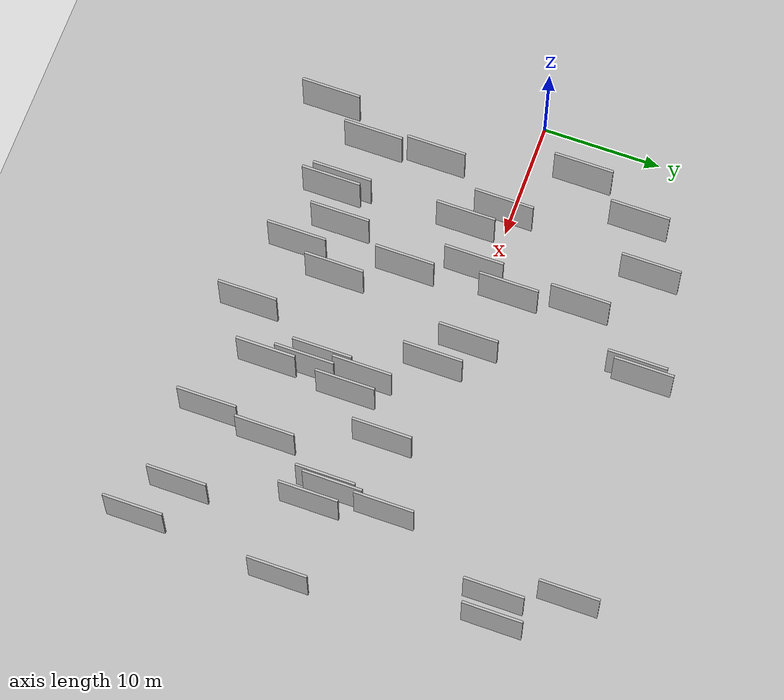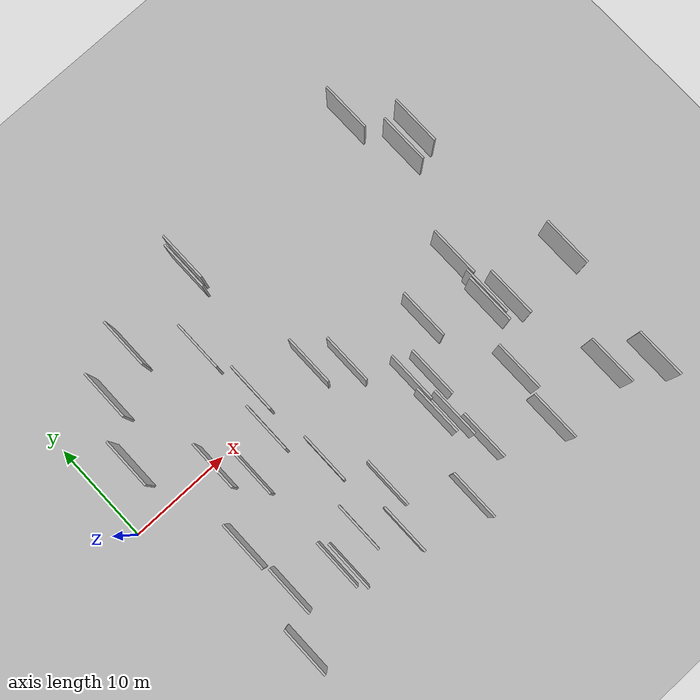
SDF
<?xml version="1.0" encoding="utf-8"?>

<sdf version="1.6">

   <world name="default">

      <gui fullscreen="0">

         <camera name="user_camera">

            <pose>-15 0 4.57585 0 0 0</pose>

            <view_controller>orbit</view_controller>

         </camera>

      </gui>

      <scene>

         <sky>

           <clouds>

             <speed>12</speed>

           </clouds>

         </sky>

         <ambient>0.4 0.4 0.4 1</ambient>

         <background>0.7 0.7 0.7 1</background>

         <shadows>1</shadows>

      </scene>

      <gravity>0 0 -9.8066</gravity>

      <magnetic_field>6e-06 2.3e-05 -4.2e-05</magnetic_field>

      <physics default="0" name="default_physics" type="ode">

         <ode>

            <solver>

               <type>quick</type>

               <iters>10</iters>

               <sor>1.0</sor>

               <use_dynamic_moi_rescaling>0</use_dynamic_moi_rescaling>

            </solver>

            <constraints>

               <cfm>0</cfm>

               <erp>0.2</erp>

               <contact_max_correcting_vel>100</contact_max_correcting_vel>

               <contact_surface_layer>0.001</contact_surface_layer>

            </constraints>

         </ode>

         <max_step_size>0.004</max_step_size>

         <real_time_factor>1</real_time_factor>

         <real_time_update_rate>250</real_time_update_rate>

      </physics>

      <light name="sun" type="directional">

         <cast_shadows>1</cast_shadows>

         <pose>0 0 10 0 0 0</pose>

         <diffuse>0.8 0.8 0.8 1</diffuse>

         <specular>0.2 0.2 0.2 1</specular>

         <attenuation>

            <range>1000</range>

            <constant>0.9</constant>

            <linear>0.01</linear>

            <quadratic>0.001</quadratic>

         </attenuation>

         <direction>-0.5 0.1 -0.9</direction>

      </light>

      <include>

         <name>ground_plane_1</name>

         <uri>model://HANNAS_ground_plane</uri>

         <pose>0 0 0  0 0 0</pose>

      </include>

      <include>

         <name>ground_plane_2</name>

         <uri>model://HANNAS_ground_plane</uri>

         <pose>100 0 0  0 0 0</pose>

      </include>

      <model name="HANNAS_wall_1">

         <static>1</static>

         <pose frame="">19.2661 14.6538 0.0 0.000000 0.000000 1.570796</pose>

         <link name="link">

            <pose frame="">0 0 2.50 0 0 0</pose>

            <collision name="collision">

               <geometry>

                  <box>

                     <size>5.00 0.2 5.00</size>

                  </box>

               </geometry>

               <max_contacts>10</max_contacts>

               <surface>

                  <contact>

                     <ode/>

                  </contact>

                  <bounce/>

                  <friction>

                     <torsional>

                        <ode/>

                     </torsional>

                     <ode/>

                  </friction>

               </surface>

            </collision>

            <visual name="visual">

               <cast_shadows>0</cast_shadows>

               <geometry>

                  <box>

                     <size>5.00 0.2 5.00</size>

                  </box>

               </geometry>

               <material>

                  <script>

                     <uri>model://HANNAS_wall/materials/scripts</uri>

                     <uri>model://HANNAS_wall/materials/textures</uri>

                     <name>vrc/HANNAS_wall</name>

                  </script>

               </material>

            </visual>

            <self_collide>0</self_collide>

            <enable_wind>0</enable_wind>

            <kinematic>0</kinematic>

         </link>

      </model>

      <model name="HANNAS_wall_2">

         <static>1</static>

         <pose frame="">23.6513 -1.5593 0.0 0.000000 0.000000 1.570796</pose>

         <link name="link">

            <pose frame="">0 0 2.50 0 0 0</pose>

            <collision name="collision">

               <geometry>

                  <box>

                     <size>5.00 0.2 5.00</size>

                  </box>

               </geometry>

               <max_contacts>10</max_contacts>

               <surface>

                  <contact>

                     <ode/>

                  </contact>

                  <bounce/>

                  <friction>

                     <torsional>

                        <ode/>

                     </torsional>

                     <ode/>

                  </friction>

               </surface>

            </collision>

            <visual name="visual">

               <cast_shadows>0</cast_shadows>

               <geometry>

                  <box>

                     <size>5.00 0.2 5.00</size>

                  </box>

               </geometry>

               <material>

                  <script>

                     <uri>model://HANNAS_wall/materials/scripts</uri>

                     <uri>model://HANNAS_wall/materials/textures</uri>

                     <name>vrc/HANNAS_wall</name>

                  </script>

               </material>

            </visual>

            <self_collide>0</self_collide>

            <enable_wind>0</enable_wind>

            <kinematic>0</kinematic>

         </link>

      </model>

      <model name="HANNAS_wall_3">

         <static>1</static>

         <pose frame="">15.9700 2.1878 0.0 0.000000 0.000000 1.570796</pose>

         <link name="link">

            <pose frame="">0 0 2.50 0 0 0</pose>

            <collision name="collision">

               <geometry>

                  <box>

                     <size>5.00 0.2 5.00</size>

                  </box>

               </geometry>

               <max_contacts>10</max_contacts>

               <surface>

                  <contact>

                     <ode/>

                  </contact>

                  <bounce/>

                  <friction>

                     <torsional>

                        <ode/>

                     </torsional>

                     <ode/>

                  </friction>

               </surface>

            </collision>

            <visual name="visual">

               <cast_shadows>0</cast_shadows>

               <geometry>

                  <box>

                     <size>5.00 0.2 5.00</size>

                  </box>

               </geometry>

               <material>

                  <script>

                     <uri>model://HANNAS_wall/materials/scripts</uri>

                     <uri>model://HANNAS_wall/materials/textures</uri>

                     <name>vrc/HANNAS_wall</name>

                  </script>

               </material>

            </visual>

            <self_collide>0</self_collide>

            <enable_wind>0</enable_wind>

            <kinematic>0</kinematic>

         </link>

      </model>

      <model name="HANNAS_wall_4">

         <static>1</static>

         <pose frame="">27.7663 -14.2322 0.0 0.000000 0.000000 1.570796</pose>

         <link name="link">

            <pose frame="">0 0 2.50 0 0 0</pose>

            <collision name="collision">

               <geometry>

                  <box>

                     <size>5.00 0.2 5.00</size>

                  </box>

               </geometry>

               <max_contacts>10</max_contacts>

               <surface>

                  <contact>

                     <ode/>

                  </contact>

                  <bounce/>

                  <friction>

                     <torsional>

                        <ode/>

                     </torsional>

                     <ode/>

                  </friction>

               </surface>

            </collision>

            <visual name="visual">

               <cast_shadows>0</cast_shadows>

               <geometry>

                  <box>

                     <size>5.00 0.2 5.00</size>

                  </box>

               </geometry>

               <material>

                  <script>

                     <uri>model://HANNAS_wall/materials/scripts</uri>

                     <uri>model://HANNAS_wall/materials/textures</uri>

                     <name>vrc/HANNAS_wall</name>

                  </script>

               </material>

            </visual>

            <self_collide>0</self_collide>

            <enable_wind>0</enable_wind>

            <kinematic>0</kinematic>

         </link>

      </model>

      <model name="HANNAS_wall_5">

         <static>1</static>

         <pose frame="">34.0127 -11.9965 0.0 0.000000 0.000000 1.570796</pose>

         <link name="link">

            <pose frame="">0 0 2.50 0 0 0</pose>

            <collision name="collision">

               <geometry>

                  <box>

                     <size>5.00 0.2 5.00</size>

                  </box>

               </geometry>

               <max_contacts>10</max_contacts>

               <surface>

                  <contact>

                     <ode/>

                  </contact>

                  <bounce/>

                  <friction>

                     <torsional>

                        <ode/>

                     </torsional>

                     <ode/>

                  </friction>

               </surface>

            </collision>

            <visual name="visual">

               <cast_shadows>0</cast_shadows>

               <geometry>

                  <box>

                     <size>5.00 0.2 5.00</size>

                  </box>

               </geometry>

               <material>

                  <script>

                     <uri>model://HANNAS_wall/materials/scripts</uri>

                     <uri>model://HANNAS_wall/materials/textures</uri>

                     <name>vrc/HANNAS_wall</name>

                  </script>

               </material>

            </visual>

            <self_collide>0</self_collide>

            <enable_wind>0</enable_wind>

            <kinematic>0</kinematic>

         </link>

      </model>

      <model name="HANNAS_wall_6">

         <static>1</static>

         <pose frame="">15.0200 7.9457 0.0 0.000000 0.000000 1.570796</pose>

         <link name="link">

            <pose frame="">0 0 2.50 0 0 0</pose>

            <collision name="collision">

               <geometry>

                  <box>

                     <size>5.00 0.2 5.00</size>

                  </box>

               </geometry>

               <max_contacts>10</max_contacts>

               <surface>

                  <contact>

                     <ode/>

                  </contact>

                  <bounce/>

                  <friction>

                     <torsional>

                        <ode/>

                     </torsional>

                     <ode/>

                  </friction>

               </surface>

            </collision>

            <visual name="visual">

               <cast_shadows>0</cast_shadows>

               <geometry>

                  <box>

                     <size>5.00 0.2 5.00</size>

                  </box>

               </geometry>

               <material>

                  <script>

                     <uri>model://HANNAS_wall/materials/scripts</uri>

                     <uri>model://HANNAS_wall/materials/textures</uri>

                     <name>vrc/HANNAS_wall</name>

                  </script>

               </material>

            </visual>

            <self_collide>0</self_collide>

            <enable_wind>0</enable_wind>

            <kinematic>0</kinematic>

         </link>

      </model>

      <model name="HANNAS_wall_7">

         <static>1</static>

         <pose frame="">11.1960 -3.1228 0.0 0.000000 0.000000 1.570796</pose>

         <link name="link">

            <pose frame="">0 0 2.50 0 0 0</pose>

            <collision name="collision">

               <geometry>

                  <box>

                     <size>5.00 0.2 5.00</size>

                  </box>

               </geometry>

               <max_contacts>10</max_contacts>

               <surface>

                  <contact>

                     <ode/>

                  </contact>

                  <bounce/>

                  <friction>

                     <torsional>

                        <ode/>

                     </torsional>

                     <ode/>

                  </friction>

               </surface>

            </collision>

            <visual name="visual">

               <cast_shadows>0</cast_shadows>

               <geometry>

                  <box>

                     <size>5.00 0.2 5.00</size>

                  </box>

               </geometry>

               <material>

                  <script>

                     <uri>model://HANNAS_wall/materials/scripts</uri>

                     <uri>model://HANNAS_wall/materials/textures</uri>

                     <name>vrc/HANNAS_wall</name>

                  </script>

               </material>

            </visual>

            <self_collide>0</self_collide>

            <enable_wind>0</enable_wind>

            <kinematic>0</kinematic>

         </link>

      </model>

      <model name="HANNAS_wall_8">

         <static>1</static>

         <pose frame="">11.9306 -14.4525 0.0 0.000000 0.000000 1.570796</pose>

         <link name="link">

            <pose frame="">0 0 2.50 0 0 0</pose>

            <collision name="collision">

               <geometry>

                  <box>

                     <size>5.00 0.2 5.00</size>

                  </box>

               </geometry>

               <max_contacts>10</max_contacts>

               <surface>

                  <contact>

                     <ode/>

                  </contact>

                  <bounce/>

                  <friction>

                     <torsional>

                        <ode/>

                     </torsional>

                     <ode/>

                  </friction>

               </surface>

            </collision>

            <visual name="visual">

               <cast_shadows>0</cast_shadows>

               <geometry>

                  <box>

                     <size>5.00 0.2 5.00</size>

                  </box>

               </geometry>

               <material>

                  <script>

                     <uri>model://HANNAS_wall/materials/scripts</uri>

                     <uri>model://HANNAS_wall/materials/textures</uri>

                     <name>vrc/HANNAS_wall</name>

                  </script>

               </material>

            </visual>

            <self_collide>0</self_collide>

            <enable_wind>0</enable_wind>

            <kinematic>0</kinematic>

         </link>

      </model>

      <model name="HANNAS_wall_9">

         <static>1</static>

         <pose frame="">37.9917 -6.8617 0.0 0.000000 0.000000 1.570796</pose>

         <link name="link">

            <pose frame="">0 0 2.50 0 0 0</pose>

            <collision name="collision">

               <geometry>

                  <box>

                     <size>5.00 0.2 5.00</size>

                  </box>

               </geometry>

               <max_contacts>10</max_contacts>

               <surface>

                  <contact>

                     <ode/>

                  </contact>

                  <bounce/>

                  <friction>

                     <torsional>

                        <ode/>

                     </torsional>

                     <ode/>

                  </friction>

               </surface>

            </collision>

            <visual name="visual">

               <cast_shadows>0</cast_shadows>

               <geometry>

                  <box>

                     <size>5.00 0.2 5.00</size>

                  </box>

               </geometry>

               <material>

                  <script>

                     <uri>model://HANNAS_wall/materials/scripts</uri>

                     <uri>model://HANNAS_wall/materials/textures</uri>

                     <name>vrc/HANNAS_wall</name>

                  </script>

               </material>

            </visual>

            <self_collide>0</self_collide>

            <enable_wind>0</enable_wind>

            <kinematic>0</kinematic>

         </link>

      </model>

      <model name="HANNAS_wall_10">

         <static>1</static>

         <pose frame="">23.6652 -17.3203 0.0 0.000000 0.000000 1.570796</pose>

         <link name="link">

            <pose frame="">0 0 2.50 0 0 0</pose>

            <collision name="collision">

               <geometry>

                  <box>

                     <size>5.00 0.2 5.00</size>

                  </box>

               </geometry>

               <max_contacts>10</max_contacts>

               <surface>

                  <contact>

                     <ode/>

                  </contact>

                  <bounce/>

                  <friction>

                     <torsional>

                        <ode/>

                     </torsional>

                     <ode/>

                  </friction>

               </surface>

            </collision>

            <visual name="visual">

               <cast_shadows>0</cast_shadows>

               <geometry>

                  <box>

                     <size>5.00 0.2 5.00</size>

                  </box>

               </geometry>

               <material>

                  <script>

                     <uri>model://HANNAS_wall/materials/scripts</uri>

                     <uri>model://HANNAS_wall/materials/textures</uri>

                     <name>vrc/HANNAS_wall</name>

                  </script>

               </material>

            </visual>

            <self_collide>0</self_collide>

            <enable_wind>0</enable_wind>

            <kinematic>0</kinematic>

         </link>

      </model>

      <model name="HANNAS_wall_11">

         <static>1</static>

         <pose frame="">6.5280 -7.3016 0.0 0.000000 0.000000 1.570796</pose>

         <link name="link">

            <pose frame="">0 0 2.50 0 0 0</pose>

            <collision name="collision">

               <geometry>

                  <box>

                     <size>5.00 0.2 5.00</size>

                  </box>

               </geometry>

               <max_contacts>10</max_contacts>

               <surface>

                  <contact>

                     <ode/>

                  </contact>

                  <bounce/>

                  <friction>

                     <torsional>

                        <ode/>

                     </torsional>

                     <ode/>

                  </friction>

               </surface>

            </collision>

            <visual name="visual">

               <cast_shadows>0</cast_shadows>

               <geometry>

                  <box>

                     <size>5.00 0.2 5.00</size>

                  </box>

               </geometry>

               <material>

                  <script>

                     <uri>model://HANNAS_wall/materials/scripts</uri>

                     <uri>model://HANNAS_wall/materials/textures</uri>

                     <name>vrc/HANNAS_wall</name>

                  </script>

               </material>

            </visual>

            <self_collide>0</self_collide>

            <enable_wind>0</enable_wind>

            <kinematic>0</kinematic>

         </link>

      </model>

      <model name="HANNAS_wall_12">

         <static>1</static>

         <pose frame="">16.5269 -6.4762 0.0 0.000000 0.000000 1.570796</pose>

         <link name="link">

            <pose frame="">0 0 2.50 0 0 0</pose>

            <collision name="collision">

               <geometry>

                  <box>

                     <size>5.00 0.2 5.00</size>

                  </box>

               </geometry>

               <max_contacts>10</max_contacts>

               <surface>

                  <contact>

                     <ode/>

                  </contact>

                  <bounce/>

                  <friction>

                     <torsional>

                        <ode/>

                     </torsional>

                     <ode/>

                  </friction>

               </surface>

            </collision>

            <visual name="visual">

               <cast_shadows>0</cast_shadows>

               <geometry>

                  <box>

                     <size>5.00 0.2 5.00</size>

                  </box>

               </geometry>

               <material>

                  <script>

                     <uri>model://HANNAS_wall/materials/scripts</uri>

                     <uri>model://HANNAS_wall/materials/textures</uri>

                     <name>vrc/HANNAS_wall</name>

                  </script>

               </material>

            </visual>

            <self_collide>0</self_collide>

            <enable_wind>0</enable_wind>

            <kinematic>0</kinematic>

         </link>

      </model>

      <model name="HANNAS_wall_13">

         <static>1</static>

         <pose frame="">31.1233 -3.1912 0.0 0.000000 0.000000 1.570796</pose>

         <link name="link">

            <pose frame="">0 0 2.50 0 0 0</pose>

            <collision name="collision">

               <geometry>

                  <box>

                     <size>5.00 0.2 5.00</size>

                  </box>

               </geometry>

               <max_contacts>10</max_contacts>

               <surface>

                  <contact>

                     <ode/>

                  </contact>

                  <bounce/>

                  <friction>

                     <torsional>

                        <ode/>

                     </torsional>

                     <ode/>

                  </friction>

               </surface>

            </collision>

            <visual name="visual">

               <cast_shadows>0</cast_shadows>

               <geometry>

                  <box>

                     <size>5.00 0.2 5.00</size>

                  </box>

               </geometry>

               <material>

                  <script>

                     <uri>model://HANNAS_wall/materials/scripts</uri>

                     <uri>model://HANNAS_wall/materials/textures</uri>

                     <name>vrc/HANNAS_wall</name>

                  </script>

               </material>

            </visual>

            <self_collide>0</self_collide>

            <enable_wind>0</enable_wind>

            <kinematic>0</kinematic>

         </link>

      </model>

      <model name="HANNAS_wall_14">

         <static>1</static>

         <pose frame="">38.7796 14.9686 0.0 0.000000 0.000000 1.570796</pose>

         <link name="link">

            <pose frame="">0 0 2.50 0 0 0</pose>

            <collision name="collision">

               <geometry>

                  <box>

                     <size>5.00 0.2 5.00</size>

                  </box>

               </geometry>

               <max_contacts>10</max_contacts>

               <surface>

                  <contact>

                     <ode/>

                  </contact>

                  <bounce/>

                  <friction>

                     <torsional>

                        <ode/>

                     </torsional>

                     <ode/>

                  </friction>

               </surface>

            </collision>

            <visual name="visual">

               <cast_shadows>0</cast_shadows>

               <geometry>

                  <box>

                     <size>5.00 0.2 5.00</size>

                  </box>

               </geometry>

               <material>

                  <script>

                     <uri>model://HANNAS_wall/materials/scripts</uri>

                     <uri>model://HANNAS_wall/materials/textures</uri>

                     <name>vrc/HANNAS_wall</name>

                  </script>

               </material>

            </visual>

            <self_collide>0</self_collide>

            <enable_wind>0</enable_wind>

            <kinematic>0</kinematic>

         </link>

      </model>

      <model name="HANNAS_wall_15">

         <static>1</static>

         <pose frame="">26.6368 -6.4794 0.0 0.000000 0.000000 1.570796</pose>

         <link name="link">

            <pose frame="">0 0 2.50 0 0 0</pose>

            <collision name="collision">

               <geometry>

                  <box>

                     <size>5.00 0.2 5.00</size>

                  </box>

               </geometry>

               <max_contacts>10</max_contacts>

               <surface>

                  <contact>

                     <ode/>

                  </contact>

                  <bounce/>

                  <friction>

                     <torsional>

                        <ode/>

                     </torsional>

                     <ode/>

                  </friction>

               </surface>

            </collision>

            <visual name="visual">

               <cast_shadows>0</cast_shadows>

               <geometry>

                  <box>

                     <size>5.00 0.2 5.00</size>

                  </box>

               </geometry>

               <material>

                  <script>

                     <uri>model://HANNAS_wall/materials/scripts</uri>

                     <uri>model://HANNAS_wall/materials/textures</uri>

                     <name>vrc/HANNAS_wall</name>

                  </script>

               </material>

            </visual>

            <self_collide>0</self_collide>

            <enable_wind>0</enable_wind>

            <kinematic>0</kinematic>

         </link>

      </model>

      <model name="HANNAS_wall_16">

         <static>1</static>

         <pose frame="">26.3053 -9.9711 0.0 0.000000 0.000000 1.570796</pose>

         <link name="link">

            <pose frame="">0 0 2.50 0 0 0</pose>

            <collision name="collision">

               <geometry>

                  <box>

                     <size>5.00 0.2 5.00</size>

                  </box>

               </geometry>

               <max_contacts>10</max_contacts>

               <surface>

                  <contact>

                     <ode/>

                  </contact>

                  <bounce/>

                  <friction>

                     <torsional>

                        <ode/>

                     </torsional>

                     <ode/>

                  </friction>

               </surface>

            </collision>

            <visual name="visual">

               <cast_shadows>0</cast_shadows>

               <geometry>

                  <box>

                     <size>5.00 0.2 5.00</size>

                  </box>

               </geometry>

               <material>

                  <script>

                     <uri>model://HANNAS_wall/materials/scripts</uri>

                     <uri>model://HANNAS_wall/materials/textures</uri>

                     <name>vrc/HANNAS_wall</name>

                  </script>

               </material>

            </visual>

            <self_collide>0</self_collide>

            <enable_wind>0</enable_wind>

            <kinematic>0</kinematic>

         </link>

      </model>

      <model name="HANNAS_wall_17">

         <static>1</static>

         <pose frame="">18.8314 13.9887 0.0 0.000000 0.000000 1.570796</pose>

         <link name="link">

            <pose frame="">0 0 2.50 0 0 0</pose>

            <collision name="collision">

               <geometry>

                  <box>

                     <size>5.00 0.2 5.00</size>

                  </box>

               </geometry>

               <max_contacts>10</max_contacts>

               <surface>

                  <contact>

                     <ode/>

                  </contact>

                  <bounce/>

                  <friction>

                     <torsional>

                        <ode/>

                     </torsional>

                     <ode/>

                  </friction>

               </surface>

            </collision>

            <visual name="visual">

               <cast_shadows>0</cast_shadows>

               <geometry>

                  <box>

                     <size>5.00 0.2 5.00</size>

                  </box>

               </geometry>

               <material>

                  <script>

                     <uri>model://HANNAS_wall/materials/scripts</uri>

                     <uri>model://HANNAS_wall/materials/textures</uri>

                     <name>vrc/HANNAS_wall</name>

                  </script>

               </material>

            </visual>

            <self_collide>0</self_collide>

            <enable_wind>0</enable_wind>

            <kinematic>0</kinematic>

         </link>

      </model>

      <model name="HANNAS_wall_18">

         <static>1</static>

         <pose frame="">40.2063 -17.0355 0.0 0.000000 0.000000 1.570796</pose>

         <link name="link">

            <pose frame="">0 0 2.50 0 0 0</pose>

            <collision name="collision">

               <geometry>

                  <box>

                     <size>5.00 0.2 5.00</size>

                  </box>

               </geometry>

               <max_contacts>10</max_contacts>

               <surface>

                  <contact>

                     <ode/>

                  </contact>

                  <bounce/>

                  <friction>

                     <torsional>

                        <ode/>

                     </torsional>

                     <ode/>

                  </friction>

               </surface>

            </collision>

            <visual name="visual">

               <cast_shadows>0</cast_shadows>

               <geometry>

                  <box>

                     <size>5.00 0.2 5.00</size>

                  </box>

               </geometry>

               <material>

                  <script>

                     <uri>model://HANNAS_wall/materials/scripts</uri>

                     <uri>model://HANNAS_wall/materials/textures</uri>

                     <name>vrc/HANNAS_wall</name>

                  </script>

               </material>

            </visual>

            <self_collide>0</self_collide>

            <enable_wind>0</enable_wind>

            <kinematic>0</kinematic>

         </link>

      </model>

      <model name="HANNAS_wall_19">

         <static>1</static>

         <pose frame="">43.6343 -19.3873 0.0 0.000000 0.000000 1.570796</pose>

         <link name="link">

            <pose frame="">0 0 2.50 0 0 0</pose>

            <collision name="collision">

               <geometry>

                  <box>

                     <size>5.00 0.2 5.00</size>

                  </box>

               </geometry>

               <max_contacts>10</max_contacts>

               <surface>

                  <contact>

                     <ode/>

                  </contact>

                  <bounce/>

                  <friction>

                     <torsional>

                        <ode/>

                     </torsional>

                     <ode/>

                  </friction>

               </surface>

            </collision>

            <visual name="visual">

               <cast_shadows>0</cast_shadows>

               <geometry>

                  <box>

                     <size>5.00 0.2 5.00</size>

                  </box>

               </geometry>

               <material>

                  <script>

                     <uri>model://HANNAS_wall/materials/scripts</uri>

                     <uri>model://HANNAS_wall/materials/textures</uri>

                     <name>vrc/HANNAS_wall</name>

                  </script>

               </material>

            </visual>

            <self_collide>0</self_collide>

            <enable_wind>0</enable_wind>

            <kinematic>0</kinematic>

         </link>

      </model>

      <model name="HANNAS_wall_20">

         <static>1</static>

         <pose frame="">6.4087 10.1538 0.0 0.000000 0.000000 1.570796</pose>

         <link name="link">

            <pose frame="">0 0 2.50 0 0 0</pose>

            <collision name="collision">

               <geometry>

                  <box>

                     <size>5.00 0.2 5.00</size>

                  </box>

               </geometry>

               <max_contacts>10</max_contacts>

               <surface>

                  <contact>

                     <ode/>

                  </contact>

                  <bounce/>

                  <friction>

                     <torsional>

                        <ode/>

                     </torsional>

                     <ode/>

                  </friction>

               </surface>

            </collision>

            <visual name="visual">

               <cast_shadows>0</cast_shadows>

               <geometry>

                  <box>

                     <size>5.00 0.2 5.00</size>

                  </box>

               </geometry>

               <material>

                  <script>

                     <uri>model://HANNAS_wall/materials/scripts</uri>

                     <uri>model://HANNAS_wall/materials/textures</uri>

                     <name>vrc/HANNAS_wall</name>

                  </script>

               </material>

            </visual>

            <self_collide>0</self_collide>

            <enable_wind>0</enable_wind>

            <kinematic>0</kinematic>

         </link>

      </model>

      <model name="HANNAS_wall_21">

         <static>1</static>

         <pose frame="">19.0332 -11.6230 0.0 0.000000 0.000000 1.570796</pose>

         <link name="link">

            <pose frame="">0 0 2.50 0 0 0</pose>

            <collision name="collision">

               <geometry>

                  <box>

                     <size>5.00 0.2 5.00</size>

                  </box>

               </geometry>

               <max_contacts>10</max_contacts>

               <surface>

                  <contact>

                     <ode/>

                  </contact>

                  <bounce/>

                  <friction>

                     <torsional>

                        <ode/>

                     </torsional>

                     <ode/>

                  </friction>

               </surface>

            </collision>

            <visual name="visual">

               <cast_shadows>0</cast_shadows>

               <geometry>

                  <box>

                     <size>5.00 0.2 5.00</size>

                  </box>

               </geometry>

               <material>

                  <script>

                     <uri>model://HANNAS_wall/materials/scripts</uri>

                     <uri>model://HANNAS_wall/materials/textures</uri>

                     <name>vrc/HANNAS_wall</name>

                  </script>

               </material>

            </visual>

            <self_collide>0</self_collide>

            <enable_wind>0</enable_wind>

            <kinematic>0</kinematic>

         </link>

      </model>

      <model name="HANNAS_wall_22">

         <static>1</static>

         <pose frame="">36.2271 -6.0763 0.0 0.000000 0.000000 1.570796</pose>

         <link name="link">

            <pose frame="">0 0 2.50 0 0 0</pose>

            <collision name="collision">

               <geometry>

                  <box>

                     <size>5.00 0.2 5.00</size>

                  </box>

               </geometry>

               <max_contacts>10</max_contacts>

               <surface>

                  <contact>

                     <ode/>

                  </contact>

                  <bounce/>

                  <friction>

                     <torsional>

                        <ode/>

                     </torsional>

                     <ode/>

                  </friction>

               </surface>

            </collision>

            <visual name="visual">

               <cast_shadows>0</cast_shadows>

               <geometry>

                  <box>

                     <size>5.00 0.2 5.00</size>

                  </box>

               </geometry>

               <material>

                  <script>

                     <uri>model://HANNAS_wall/materials/scripts</uri>

                     <uri>model://HANNAS_wall/materials/textures</uri>

                     <name>vrc/HANNAS_wall</name>

                  </script>

               </material>

            </visual>

            <self_collide>0</self_collide>

            <enable_wind>0</enable_wind>

            <kinematic>0</kinematic>

         </link>

      </model>

      <model name="HANNAS_wall_23">

         <static>1</static>

         <pose frame="">44.6072 -6.9962 0.0 0.000000 0.000000 1.570796</pose>

         <link name="link">

            <pose frame="">0 0 2.50 0 0 0</pose>

            <collision name="collision">

               <geometry>

                  <box>

                     <size>5.00 0.2 5.00</size>

                  </box>

               </geometry>

               <max_contacts>10</max_contacts>

               <surface>

                  <contact>

                     <ode/>

                  </contact>

                  <bounce/>

                  <friction>

                     <torsional>

                        <ode/>

                     </torsional>

                     <ode/>

                  </friction>

               </surface>

            </collision>

            <visual name="visual">

               <cast_shadows>0</cast_shadows>

               <geometry>

                  <box>

                     <size>5.00 0.2 5.00</size>

                  </box>

               </geometry>

               <material>

                  <script>

                     <uri>model://HANNAS_wall/materials/scripts</uri>

                     <uri>model://HANNAS_wall/materials/textures</uri>

                     <name>vrc/HANNAS_wall</name>

                  </script>

               </material>

            </visual>

            <self_collide>0</self_collide>

            <enable_wind>0</enable_wind>

            <kinematic>0</kinematic>

         </link>

      </model>

      <model name="HANNAS_wall_24">

         <static>1</static>

         <pose frame="">27.2567 -11.1444 0.0 0.000000 0.000000 1.570796</pose>

         <link name="link">

            <pose frame="">0 0 2.50 0 0 0</pose>

            <collision name="collision">

               <geometry>

                  <box>

                     <size>5.00 0.2 5.00</size>

                  </box>

               </geometry>

               <max_contacts>10</max_contacts>

               <surface>

                  <contact>

                     <ode/>

                  </contact>

                  <bounce/>

                  <friction>

                     <torsional>

                        <ode/>

                     </torsional>

                     <ode/>

                  </friction>

               </surface>

            </collision>

            <visual name="visual">

               <cast_shadows>0</cast_shadows>

               <geometry>

                  <box>

                     <size>5.00 0.2 5.00</size>

                  </box>

               </geometry>

               <material>

                  <script>

                     <uri>model://HANNAS_wall/materials/scripts</uri>

                     <uri>model://HANNAS_wall/materials/textures</uri>

                     <name>vrc/HANNAS_wall</name>

                  </script>

               </material>

            </visual>

            <self_collide>0</self_collide>

            <enable_wind>0</enable_wind>

            <kinematic>0</kinematic>

         </link>

      </model>

      <model name="HANNAS_wall_25">

         <static>1</static>

         <pose frame="">28.2446 -7.3317 0.0 0.000000 0.000000 1.570796</pose>

         <link name="link">

            <pose frame="">0 0 2.50 0 0 0</pose>

            <collision name="collision">

               <geometry>

                  <box>

                     <size>5.00 0.2 5.00</size>

                  </box>

               </geometry>

               <max_contacts>10</max_contacts>

               <surface>

                  <contact>

                     <ode/>

                  </contact>

                  <bounce/>

                  <friction>

                     <torsional>

                        <ode/>

                     </torsional>

                     <ode/>

                  </friction>

               </surface>

            </collision>

            <visual name="visual">

               <cast_shadows>0</cast_shadows>

               <geometry>

                  <box>

                     <size>5.00 0.2 5.00</size>

                  </box>

               </geometry>

               <material>

                  <script>

                     <uri>model://HANNAS_wall/materials/scripts</uri>

                     <uri>model://HANNAS_wall/materials/textures</uri>

                     <name>vrc/HANNAS_wall</name>

                  </script>

               </material>

            </visual>

            <self_collide>0</self_collide>

            <enable_wind>0</enable_wind>

            <kinematic>0</kinematic>

         </link>

      </model>

      <model name="HANNAS_wall_26">

         <static>1</static>

         <pose frame="">33.3129 -17.1293 0.0 0.000000 0.000000 1.570796</pose>

         <link name="link">

            <pose frame="">0 0 2.50 0 0 0</pose>

            <collision name="collision">

               <geometry>

                  <box>

                     <size>5.00 0.2 5.00</size>

                  </box>

               </geometry>

               <max_contacts>10</max_contacts>

               <surface>

                  <contact>

                     <ode/>

                  </contact>

                  <bounce/>

                  <friction>

                     <torsional>

                        <ode/>

                     </torsional>

                     <ode/>

                  </friction>

               </surface>

            </collision>

            <visual name="visual">

               <cast_shadows>0</cast_shadows>

               <geometry>

                  <box>

                     <size>5.00 0.2 5.00</size>

                  </box>

               </geometry>

               <material>

                  <script>

                     <uri>model://HANNAS_wall/materials/scripts</uri>

                     <uri>model://HANNAS_wall/materials/textures</uri>

                     <name>vrc/HANNAS_wall</name>

                  </script>

               </material>

            </visual>

            <self_collide>0</self_collide>

            <enable_wind>0</enable_wind>

            <kinematic>0</kinematic>

         </link>

      </model>

      <model name="HANNAS_wall_27">

         <static>1</static>

         <pose frame="">6.9145 -12.6105 0.0 0.000000 0.000000 1.570796</pose>

         <link name="link">

            <pose frame="">0 0 2.50 0 0 0</pose>

            <collision name="collision">

               <geometry>

                  <box>

                     <size>5.00 0.2 5.00</size>

                  </box>

               </geometry>

               <max_contacts>10</max_contacts>

               <surface>

                  <contact>

                     <ode/>

                  </contact>

                  <bounce/>

                  <friction>

                     <torsional>

                        <ode/>

                     </torsional>

                     <ode/>

                  </friction>

               </surface>

            </collision>

            <visual name="visual">

               <cast_shadows>0</cast_shadows>

               <geometry>

                  <box>

                     <size>5.00 0.2 5.00</size>

                  </box>

               </geometry>

               <material>

                  <script>

                     <uri>model://HANNAS_wall/materials/scripts</uri>

                     <uri>model://HANNAS_wall/materials/textures</uri>

                     <name>vrc/HANNAS_wall</name>

                  </script>

               </material>

            </visual>

            <self_collide>0</self_collide>

            <enable_wind>0</enable_wind>

            <kinematic>0</kinematic>

         </link>

      </model>

      <model name="HANNAS_wall_28">

         <static>1</static>

         <pose frame="">11.2804 -13.7411 0.0 0.000000 0.000000 1.570796</pose>

         <link name="link">

            <pose frame="">0 0 2.50 0 0 0</pose>

            <collision name="collision">

               <geometry>

                  <box>

                     <size>5.00 0.2 5.00</size>

                  </box>

               </geometry>

               <max_contacts>10</max_contacts>

               <surface>

                  <contact>

                     <ode/>

                  </contact>

                  <bounce/>

                  <friction>

                     <torsional>

                        <ode/>

                     </torsional>

                     <ode/>

                  </friction>

               </surface>

            </collision>

            <visual name="visual">

               <cast_shadows>0</cast_shadows>

               <geometry>

                  <box>

                     <size>5.00 0.2 5.00</size>

                  </box>

               </geometry>

               <material>

                  <script>

                     <uri>model://HANNAS_wall/materials/scripts</uri>

                     <uri>model://HANNAS_wall/materials/textures</uri>

                     <name>vrc/HANNAS_wall</name>

                  </script>

               </material>

            </visual>

            <self_collide>0</self_collide>

            <enable_wind>0</enable_wind>

            <kinematic>0</kinematic>

         </link>

      </model>

      <model name="HANNAS_wall_29">

         <static>1</static>

         <pose frame="">14.7116 -12.6913 0.0 0.000000 0.000000 1.570796</pose>

         <link name="link">

            <pose frame="">0 0 2.50 0 0 0</pose>

            <collision name="collision">

               <geometry>

                  <box>

                     <size>5.00 0.2 5.00</size>

                  </box>

               </geometry>

               <max_contacts>10</max_contacts>

               <surface>

                  <contact>

                     <ode/>

                  </contact>

                  <bounce/>

                  <friction>

                     <torsional>

                        <ode/>

                     </torsional>

                     <ode/>

                  </friction>

               </surface>

            </collision>

            <visual name="visual">

               <cast_shadows>0</cast_shadows>

               <geometry>

                  <box>

                     <size>5.00 0.2 5.00</size>

                  </box>

               </geometry>

               <material>

                  <script>

                     <uri>model://HANNAS_wall/materials/scripts</uri>

                     <uri>model://HANNAS_wall/materials/textures</uri>

                     <name>vrc/HANNAS_wall</name>

                  </script>

               </material>

            </visual>

            <self_collide>0</self_collide>

            <enable_wind>0</enable_wind>

            <kinematic>0</kinematic>

         </link>

      </model>

      <model name="HANNAS_wall_30">

         <static>1</static>

         <pose frame="">4.5179 -17.1616 0.0 0.000000 0.000000 1.570796</pose>

         <link name="link">

            <pose frame="">0 0 2.50 0 0 0</pose>

            <collision name="collision">

               <geometry>

                  <box>

                     <size>5.00 0.2 5.00</size>

                  </box>

               </geometry>

               <max_contacts>10</max_contacts>

               <surface>

                  <contact>

                     <ode/>

                  </contact>

                  <bounce/>

                  <friction>

                     <torsional>

                        <ode/>

                     </torsional>

                     <ode/>

                  </friction>

               </surface>

            </collision>

            <visual name="visual">

               <cast_shadows>0</cast_shadows>

               <geometry>

                  <box>

                     <size>5.00 0.2 5.00</size>

                  </box>

               </geometry>

               <material>

                  <script>

                     <uri>model://HANNAS_wall/materials/scripts</uri>

                     <uri>model://HANNAS_wall/materials/textures</uri>

                     <name>vrc/HANNAS_wall</name>

                  </script>

               </material>

            </visual>

            <self_collide>0</self_collide>

            <enable_wind>0</enable_wind>

            <kinematic>0</kinematic>

         </link>

      </model>

      <model name="HANNAS_wall_31">

         <static>1</static>

         <pose frame="">3.9652 4.5310 0.0 0.000000 0.000000 1.570796</pose>

         <link name="link">

            <pose frame="">0 0 2.50 0 0 0</pose>

            <collision name="collision">

               <geometry>

                  <box>

                     <size>5.00 0.2 5.00</size>

                  </box>

               </geometry>

               <max_contacts>10</max_contacts>

               <surface>

                  <contact>

                     <ode/>

                  </contact>

                  <bounce/>

                  <friction>

                     <torsional>

                        <ode/>

                     </torsional>

                     <ode/>

                  </friction>

               </surface>

            </collision>

            <visual name="visual">

               <cast_shadows>0</cast_shadows>

               <geometry>

                  <box>

                     <size>5.00 0.2 5.00</size>

                  </box>

               </geometry>

               <material>

                  <script>

                     <uri>model://HANNAS_wall/materials/scripts</uri>

                     <uri>model://HANNAS_wall/materials/textures</uri>

                     <name>vrc/HANNAS_wall</name>

                  </script>

               </material>

            </visual>

            <self_collide>0</self_collide>

            <enable_wind>0</enable_wind>

            <kinematic>0</kinematic>

         </link>

      </model>

      <model name="HANNAS_wall_32">

         <static>1</static>

         <pose frame="">14.6505 -1.2130 0.0 0.000000 0.000000 1.570796</pose>

         <link name="link">

            <pose frame="">0 0 2.50 0 0 0</pose>

            <collision name="collision">

               <geometry>

                  <box>

                     <size>5.00 0.2 5.00</size>

                  </box>

               </geometry>

               <max_contacts>10</max_contacts>

               <surface>

                  <contact>

                     <ode/>

                  </contact>

                  <bounce/>

                  <friction>

                     <torsional>

                        <ode/>

                     </torsional>

                     <ode/>

                  </friction>

               </surface>

            </collision>

            <visual name="visual">

               <cast_shadows>0</cast_shadows>

               <geometry>

                  <box>

                     <size>5.00 0.2 5.00</size>

                  </box>

               </geometry>

               <material>

                  <script>

                     <uri>model://HANNAS_wall/materials/scripts</uri>

                     <uri>model://HANNAS_wall/materials/textures</uri>

                     <name>vrc/HANNAS_wall</name>

                  </script>

               </material>

            </visual>

            <self_collide>0</self_collide>

            <enable_wind>0</enable_wind>

            <kinematic>0</kinematic>

         </link>

      </model>

      <model name="HANNAS_wall_33">

         <static>1</static>

         <pose frame="">10.5560 12.4437 0.0 0.000000 0.000000 1.570796</pose>

         <link name="link">

            <pose frame="">0 0 2.50 0 0 0</pose>

            <collision name="collision">

               <geometry>

                  <box>

                     <size>5.00 0.2 5.00</size>

                  </box>

               </geometry>

               <max_contacts>10</max_contacts>

               <surface>

                  <contact>

                     <ode/>

                  </contact>

                  <bounce/>

                  <friction>

                     <torsional>

                        <ode/>

                     </torsional>

                     <ode/>

                  </friction>

               </surface>

            </collision>

            <visual name="visual">

               <cast_shadows>0</cast_shadows>

               <geometry>

                  <box>

                     <size>5.00 0.2 5.00</size>

                  </box>

               </geometry>

               <material>

                  <script>

                     <uri>model://HANNAS_wall/materials/scripts</uri>

                     <uri>model://HANNAS_wall/materials/textures</uri>

                     <name>vrc/HANNAS_wall</name>

                  </script>

               </material>

            </visual>

            <self_collide>0</self_collide>

            <enable_wind>0</enable_wind>

            <kinematic>0</kinematic>

         </link>

      </model>

      <model name="HANNAS_wall_34">

         <static>1</static>

         <pose frame="">42.4631 9.9287 0.0 0.000000 0.000000 1.570796</pose>

         <link name="link">

            <pose frame="">0 0 2.50 0 0 0</pose>

            <collision name="collision">

               <geometry>

                  <box>

                     <size>5.00 0.2 5.00</size>

                  </box>

               </geometry>

               <max_contacts>10</max_contacts>

               <surface>

                  <contact>

                     <ode/>

                  </contact>

                  <bounce/>

                  <friction>

                     <torsional>

                        <ode/>

                     </torsional>

                     <ode/>

                  </friction>

               </surface>

            </collision>

            <visual name="visual">

               <cast_shadows>0</cast_shadows>

               <geometry>

                  <box>

                     <size>5.00 0.2 5.00</size>

                  </box>

               </geometry>

               <material>

                  <script>

                     <uri>model://HANNAS_wall/materials/scripts</uri>

                     <uri>model://HANNAS_wall/materials/textures</uri>

                     <name>vrc/HANNAS_wall</name>

                  </script>

               </material>

            </visual>

            <self_collide>0</self_collide>

            <enable_wind>0</enable_wind>

            <kinematic>0</kinematic>

         </link>

      </model>

      <model name="HANNAS_wall_35">

         <static>1</static>

         <pose frame="">36.5248 -5.3811 0.0 0.000000 0.000000 1.570796</pose>

         <link name="link">

            <pose frame="">0 0 2.50 0 0 0</pose>

            <collision name="collision">

               <geometry>

                  <box>

                     <size>5.00 0.2 5.00</size>

                  </box>

               </geometry>

               <max_contacts>10</max_contacts>

               <surface>

                  <contact>

                     <ode/>

                  </contact>

                  <bounce/>

                  <friction>

                     <torsional>

                        <ode/>

                     </torsional>

                     <ode/>

                  </friction>

               </surface>

            </collision>

            <visual name="visual">

               <cast_shadows>0</cast_shadows>

               <geometry>

                  <box>

                     <size>5.00 0.2 5.00</size>

                  </box>

               </geometry>

               <material>

                  <script>

                     <uri>model://HANNAS_wall/materials/scripts</uri>

                     <uri>model://HANNAS_wall/materials/textures</uri>

                     <name>vrc/HANNAS_wall</name>

                  </script>

               </material>

            </visual>

            <self_collide>0</self_collide>

            <enable_wind>0</enable_wind>

            <kinematic>0</kinematic>

         </link>

      </model>

      <model name="HANNAS_wall_36">

         <static>1</static>

         <pose frame="">40.5635 9.3944 0.0 0.000000 0.000000 1.570796</pose>

         <link name="link">

            <pose frame="">0 0 2.50 0 0 0</pose>

            <collision name="collision">

               <geometry>

                  <box>

                     <size>5.00 0.2 5.00</size>

                  </box>

               </geometry>

               <max_contacts>10</max_contacts>

               <surface>

                  <contact>

                     <ode/>

                  </contact>

                  <bounce/>

                  <friction>

                     <torsional>

                        <ode/>

                     </torsional>

                     <ode/>

                  </friction>

               </surface>

            </collision>

            <visual name="visual">

               <cast_shadows>0</cast_shadows>

               <geometry>

                  <box>

                     <size>5.00 0.2 5.00</size>

                  </box>

               </geometry>

               <material>

                  <script>

                     <uri>model://HANNAS_wall/materials/scripts</uri>

                     <uri>model://HANNAS_wall/materials/textures</uri>

                     <name>vrc/HANNAS_wall</name>

                  </script>

               </material>

            </visual>

            <self_collide>0</self_collide>

            <enable_wind>0</enable_wind>

            <kinematic>0</kinematic>

         </link>

      </model>

      <model name="HANNAS_wall_37">

         <static>1</static>

         <pose frame="">21.1622 0.5699 0.0 0.000000 0.000000 1.570796</pose>

         <link name="link">

            <pose frame="">0 0 2.50 0 0 0</pose>

            <collision name="collision">

               <geometry>

                  <box>

                     <size>5.00 0.2 5.00</size>

                  </box>

               </geometry>

               <max_contacts>10</max_contacts>

               <surface>

                  <contact>

                     <ode/>

                  </contact>

                  <bounce/>

                  <friction>

                     <torsional>

                        <ode/>

                     </torsional>

                     <ode/>

                  </friction>

               </surface>

            </collision>

            <visual name="visual">

               <cast_shadows>0</cast_shadows>

               <geometry>

                  <box>

                     <size>5.00 0.2 5.00</size>

                  </box>

               </geometry>

               <material>

                  <script>

                     <uri>model://HANNAS_wall/materials/scripts</uri>

                     <uri>model://HANNAS_wall/materials/textures</uri>

                     <name>vrc/HANNAS_wall</name>

                  </script>

               </material>

            </visual>

            <self_collide>0</self_collide>

            <enable_wind>0</enable_wind>

            <kinematic>0</kinematic>

         </link>

      </model>

      <model name="HANNAS_wall_38">

         <static>1</static>

         <pose frame="">17.4409 -15.4177 0.0 0.000000 0.000000 1.570796</pose>

         <link name="link">

            <pose frame="">0 0 2.50 0 0 0</pose>

            <collision name="collision">

               <geometry>

                  <box>

                     <size>5.00 0.2 5.00</size>

                  </box>

               </geometry>

               <max_contacts>10</max_contacts>

               <surface>

                  <contact>

                     <ode/>

                  </contact>

                  <bounce/>

                  <friction>

                     <torsional>

                        <ode/>

                     </torsional>

                     <ode/>

                  </friction>

               </surface>

            </collision>

            <visual name="visual">

               <cast_shadows>0</cast_shadows>

               <geometry>

                  <box>

                     <size>5.00 0.2 5.00</size>

                  </box>

               </geometry>

               <material>

                  <script>

                     <uri>model://HANNAS_wall/materials/scripts</uri>

                     <uri>model://HANNAS_wall/materials/textures</uri>

                     <name>vrc/HANNAS_wall</name>

                  </script>

               </material>

            </visual>

            <self_collide>0</self_collide>

            <enable_wind>0</enable_wind>

            <kinematic>0</kinematic>

         </link>

      </model>

      <model name="HANNAS_wall_39">

         <static>1</static>

         <pose frame="">36.8305 -0.9866 0.0 0.000000 0.000000 1.570796</pose>

         <link name="link">

            <pose frame="">0 0 2.50 0 0 0</pose>

            <collision name="collision">

               <geometry>

                  <box>

                     <size>5.00 0.2 5.00</size>

                  </box>

               </geometry>

               <max_contacts>10</max_contacts>

               <surface>

                  <contact>

                     <ode/>

                  </contact>

                  <bounce/>

                  <friction>

                     <torsional>

                        <ode/>

                     </torsional>

                     <ode/>

                  </friction>

               </surface>

            </collision>

            <visual name="visual">

               <cast_shadows>0</cast_shadows>

               <geometry>

                  <box>

                     <size>5.00 0.2 5.00</size>

                  </box>

               </geometry>

               <material>

                  <script>

                     <uri>model://HANNAS_wall/materials/scripts</uri>

                     <uri>model://HANNAS_wall/materials/textures</uri>

                     <name>vrc/HANNAS_wall</name>

                  </script>

               </material>

            </visual>

            <self_collide>0</self_collide>

            <enable_wind>0</enable_wind>

            <kinematic>0</kinematic>

         </link>

      </model>

      <model name="HANNAS_wall_40">

         <static>1</static>

         <pose frame="">9.1761 -0.5418 0.0 0.000000 0.000000 1.570796</pose>

         <link name="link">

            <pose frame="">0 0 2.50 0 0 0</pose>

            <collision name="collision">

               <geometry>

                  <box>

                     <size>5.00 0.2 5.00</size>

                  </box>

               </geometry>

               <max_contacts>10</max_contacts>

               <surface>

                  <contact>

                     <ode/>

                  </contact>

                  <bounce/>

                  <friction>

                     <torsional>

                        <ode/>

                     </torsional>

                     <ode/>

                  </friction>

               </surface>

            </collision>

            <visual name="visual">

               <cast_shadows>0</cast_shadows>

               <geometry>

                  <box>

                     <size>5.00 0.2 5.00</size>

                  </box>

               </geometry>

               <material>

                  <script>

                     <uri>model://HANNAS_wall/materials/scripts</uri>

                     <uri>model://HANNAS_wall/materials/textures</uri>

                     <name>vrc/HANNAS_wall</name>

                  </script>

               </material>

            </visual>

            <self_collide>0</self_collide>

            <enable_wind>0</enable_wind>

            <kinematic>0</kinematic>

         </link>

      </model>

   </world>

</sdf>
